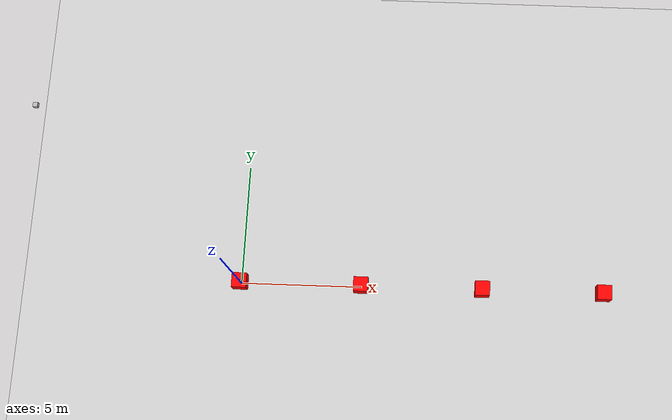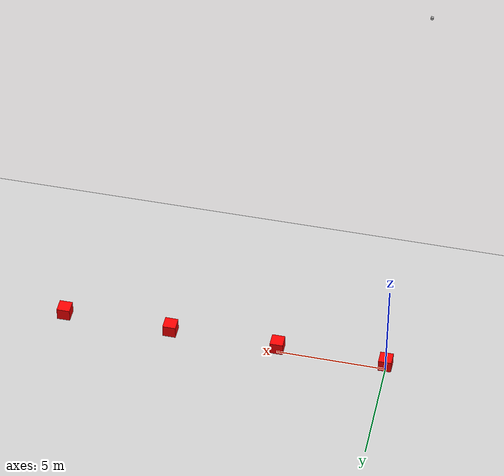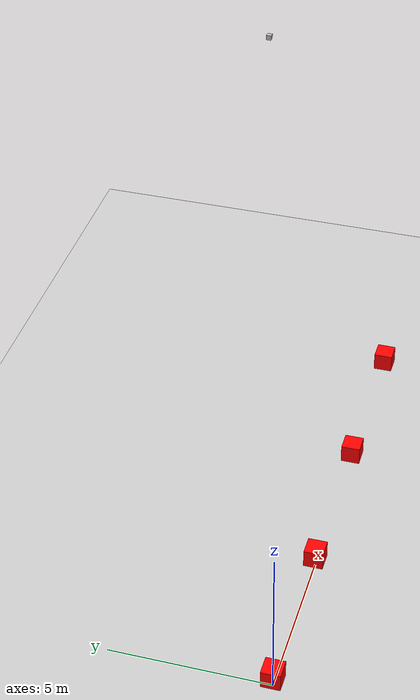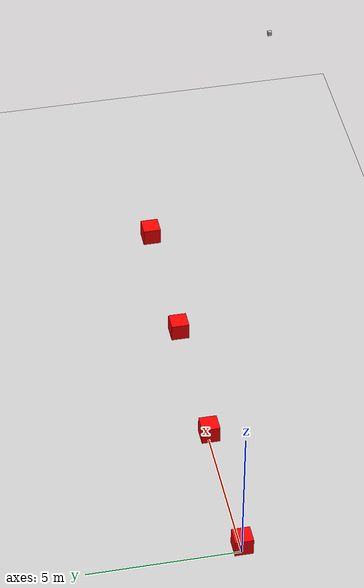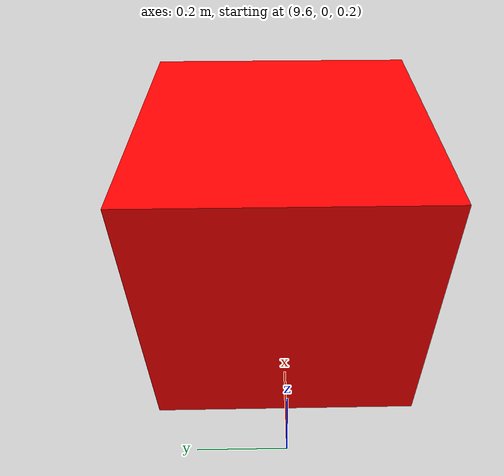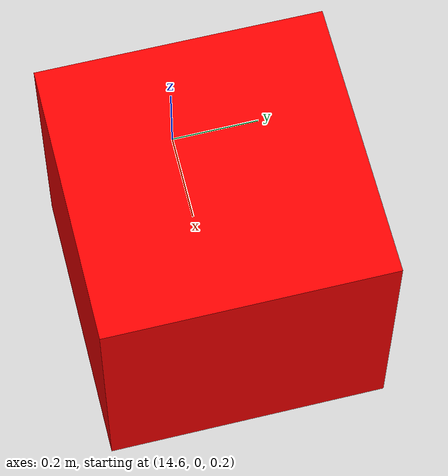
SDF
<sdf version="1.6">
 <world name="default">
  <physics name="default_physics" default="0" type="ode">
   <ode>
    <solver>
     <type>quick</type>
     <iters>40</iters>
     <precon_iters>0</precon_iters>
     <sor>1.3</sor>
     <use_dynamic_moi_rescaling>0</use_dynamic_moi_rescaling>
    </solver>
    <constraints>
     <cfm>0</cfm>
     <erp>0.2</erp>
     <contact_max_correcting_vel>100</contact_max_correcting_vel>
     <contact_surface_layer>0.001</contact_surface_layer>
    </constraints>
   </ode>
   <real_time_update_rate>500</real_time_update_rate>
   <max_step_size>0.002</max_step_size>
  </physics>
  <light name="sun" type="directional">
   <pose>0 0 10 0 -0 0</pose>
   <diffuse>0.8 0.8 0.8 1</diffuse>
   <specular>0.2 0.2 0.2 1</specular>
   <attenuation>
    <range>1000</range>
    <constant>0.9</constant>
    <linear>0.01</linear>
    <quadratic>0.001</quadratic>
   </attenuation>
   <direction>-0.5 0.1 -0.9</direction>
  </light>
  <gravity>0 0 -9.8</gravity>
  <magnetic_field>6e-06 2.3e-05 -4.2e-05</magnetic_field>
  <atmosphere type="adiabatic"/>
  <scene><ambient>0.4 0.4 0.4 1</ambient><background>0.7 0.7 0.7 1</background><shadows>1</shadows></scene>
  <audio><device>default</device></audio>
  <spherical_coordinates>
   <surface_model>EARTH_WGS84</surface_model>
   <latitude_deg>0</latitude_deg>
   <longitude_deg>0</longitude_deg>
   <elevation>0</elevation>
   <heading_deg>0</heading_deg>
  </spherical_coordinates>
  <model name="my_ground_plane">
   <static>1</static>
   <link name="link">
    <collision name="collision">
     <geometry><plane><normal>0 0 1</normal><size>130 80</size></plane></geometry>
     <surface><friction><ode><mu>1.4</mu><mu2>0.7</mu2></ode></friction></surface>
     <max_contacts>100</max_contacts>
    </collision>
    <visual name="visual">
     <cast_shadows>0</cast_shadows>
     <geometry><plane><normal>0 0 1</normal><size>130 80</size></plane></geometry>
     <material>
      <script>
       <uri>model://gazebo2real/simulation/world/road/materials/scripts/</uri>
       <uri>model://gazebo2real/simulation/world/road/materials/textures/</uri>
       <name>MyGroundPlane/Image</name>
      </script>
     </material>
    </visual>
   </link>
   <pose>0.011422 -0.031553 0 0 -0 0</pose>
  </model>
  <model name="object_box">
   <pose>0 0 0.5 0 0 0</pose>
   <link name="link">
    <inertial>
     <mass>90.0</mass>
     <inertia><ixx>0.083</ixx><ixy>0.0</ixy><ixz>0.0</ixz><iyy>0.083</iyy><iyz>0.0</iyz><izz>0.083</izz></inertia>
    </inertial>
    <collision name="collision"><geometry><box><size>0.6 0.6 0.6</size></box></geometry></collision>
    <visual name="visual">
     <geometry><box><size>0.6 0.6 0.6</size></box></geometry>
     <surface><friction><ode><mu>0.0001</mu><mu2>0.0001</mu2></ode></friction></surface>
     <material>
      <ambient>1 0 0 1</ambient>
      <diffuse>1 0 0 1</diffuse>
      <specular>0.1 0.1 0.1 1</specular>
      <emissive>0 0 0 0</emissive>
     </material>
    </visual>
   </link>
  </model>
  <model name="object_box_2">
   <pose>5 0 0.5 0 0 0</pose>
   <link name="link">
    <inertial>
     <mass>90.0</mass>
     <inertia><ixx>0.083</ixx><ixy>0.0</ixy><ixz>0.0</ixz><iyy>0.083</iyy><iyz>0.0</iyz><izz>0.083</izz></inertia>
    </inertial>
    <collision name="collision"><geometry><box><size>0.6 0.6 0.6</size></box></geometry></collision>
    <visual name="visual">
     <geometry><box><size>0.6 0.6 0.6</size></box></geometry>
     <surface><friction><ode><mu>0.0001</mu><mu2>0.0001</mu2></ode></friction></surface>
     <material>
      <ambient>1 0 0 1</ambient>
      <diffuse>1 0 0 1</diffuse>
      <specular>0.1 0.1 0.1 1</specular>
      <emissive>0 0 0 0</emissive>
     </material>
    </visual>
   </link>
  </model>
  <model name="object_box_3">
   <pose>10 0 0.5 0 0 0</pose>
   <link name="link">
    <inertial>
     <mass>90.0</mass>
     <inertia><ixx>0.083</ixx><ixy>0.0</ixy><ixz>0.0</ixz><iyy>0.083</iyy><iyz>0.0</iyz><izz>0.083</izz></inertia>
    </inertial>
    <collision name="collision"><geometry><box><size>0.6 0.6 0.6</size></box></geometry></collision>
    <visual name="visual">
     <geometry><box><size>0.6 0.6 0.6</size></box></geometry>
     <surface><friction><ode><mu>0.0001</mu><mu2>0.0001</mu2></ode></friction></surface>
     <material>
      <ambient>1 0 0 1</ambient>
      <diffuse>1 0 0 1</diffuse>
      <specular>0.1 0.1 0.1 1</specular>
      <emissive>0 0 0 0</emissive>
     </material>
    </visual>
   </link>
  </model>
  <model name="object_box_4">
   <pose>15 0 0.5 0 0 0</pose>
   <link name="link">
    <inertial>
     <mass>90.0</mass>
     <inertia><ixx>0.083</ixx><ixy>0.0</ixy><ixz>0.0</ixz><iyy>0.083</iyy><iyz>0.0</iyz><izz>0.083</izz></inertia>
    </inertial>
    <collision name="collision"><geometry><box><size>0.6 0.6 0.6</size></box></geometry></collision>
    <visual name="visual">
     <geometry><box><size>0.6 0.6 0.6</size></box></geometry>
     <surface><friction><ode><mu>0.0001</mu><mu2>0.0001</mu2></ode></friction></surface>
     <material>
      <ambient>1 0 0 1</ambient>
      <diffuse>1 0 0 1</diffuse>
      <specular>0.1 0.1 0.1 1</specular>
      <emissive>0 0 0 0</emissive>
     </material>
    </visual>
   </link>
  </model>
  <model name="camera">
   <static>true</static>
   <pose>-1 0 21  0 1.545 1.545</pose>
   <link name="link">
    <visual name="visual"><geometry><box><size>0.1 0.1 0.1</size></box></geometry></visual>
    <sensor name="gazebo_camera" type="camera">
     <camera>
      <horizontal_fov>2.5</horizontal_fov>
      <image><width>1920</width><height>1080</height></image>
      <clip><near>0.1</near><far>400</far></clip>
     </camera>
     <always_on>1</always_on>
     <update_rate>30</update_rate>
     <plugin name="gazebo_camera" filename="libgazebo_ros_camera.so">
      <alwaysOn>true</alwaysOn>
      <updateRate>0.0</updateRate>
      <cameraName>gazebo_camera</cameraName>
      <imageTopicName>/gazebo/image_raw</imageTopicName>
      <cameraInfoTopicName>camera_info</cameraInfoTopicName>
      <frameName>camera_link</frameName>
      <hackBaseline>0.07</hackBaseline>
      <distortionK1>0.0</distortionK1>
      <distortionK2>0.0</distortionK2>
      <distortionK3>0.0</distortionK3>
      <distortionT1>0.0</distortionT1>
      <distortionT2>0.0</distortionT2>
     </plugin>
    </sensor>
   </link>
  </model>
 </world>
</sdf>
